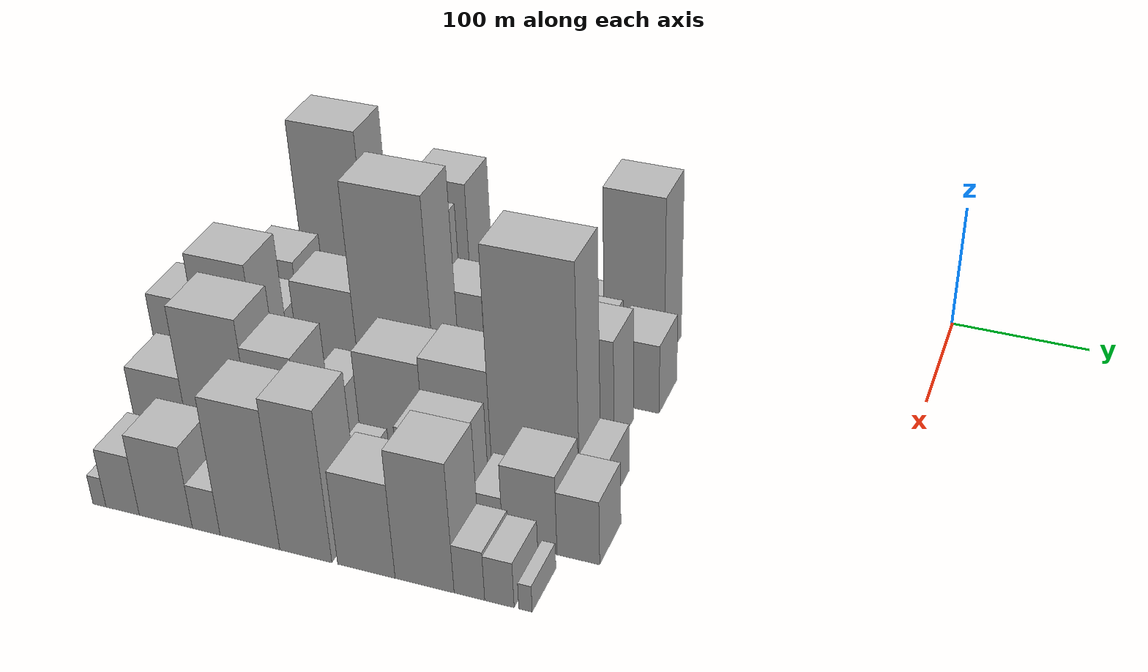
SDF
<sdf version="1.6">
 <world name="default">
  <model name="building_12">
   <static>1</static>
   <pose>100.0000 -482.2226 0 0.000000 0.000000 0.000000</pose>
   <link name="link">
    <pose>0 0 15.00 0 0 0</pose>
    <collision name="collision"><geometry><box><size>40.0000 16.5643 30.0000</size></box></geometry></collision>
    <visual name="visual">
     <cast_shadows>0</cast_shadows>
     <geometry><box><size>40.0000 16.5643 30.0000</size></box></geometry>
     <material>
      <script>
       <uri>model://HANNAS_wall/materials/scripts</uri>
       <uri>model://HANNAS_wall/materials/textures</uri>
       <name>vrc/HANNAS_wall</name>
      </script>
     </material>
    </visual>
   </link>
  </model>
  <model name="building_13">
   <static>1</static>
   <pose>100.0000 -443.1497 0 0.000000 0.000000 0.000000</pose>
   <link name="link">
    <pose>0 0 75.00 0 0 0</pose>
    <collision name="collision"><geometry><box><size>40.0000 53.5817 150.0000</size></box></geometry></collision>
    <visual name="visual">
     <cast_shadows>0</cast_shadows>
     <geometry><box><size>40.0000 53.5817 150.0000</size></box></geometry>
     <material>
      <script>
       <uri>model://HANNAS_wall/materials/scripts</uri>
       <uri>model://HANNAS_wall/materials/textures</uri>
       <name>vrc/HANNAS_wall</name>
      </script>
     </material>
    </visual>
   </link>
  </model>
  <model name="building_14">
   <static>1</static>
   <pose>100.0000 -395.4743 0 0.000000 0.000000 0.000000</pose>
   <link name="link">
    <pose>0 0 40.50 0 0 0</pose>
    <collision name="collision"><geometry><box><size>40.0000 41.7689 81.0000</size></box></geometry></collision>
    <visual name="visual">
     <cast_shadows>0</cast_shadows>
     <geometry><box><size>40.0000 41.7689 81.0000</size></box></geometry>
     <material>
      <script>
       <uri>model://HANNAS_wall/materials/scripts</uri>
       <uri>model://HANNAS_wall/materials/textures</uri>
       <name>vrc/HANNAS_wall</name>
      </script>
     </material>
    </visual>
   </link>
  </model>
  <model name="building_15">
   <static>1</static>
   <pose>100.0000 -354.0958 0 0.000000 0.000000 0.000000</pose>
   <link name="link">
    <pose>0 0 61.50 0 0 0</pose>
    <collision name="collision"><geometry><box><size>40.0000 40.9882 123.0000</size></box></geometry></collision>
    <visual name="visual">
     <cast_shadows>0</cast_shadows>
     <geometry><box><size>40.0000 40.9882 123.0000</size></box></geometry>
     <material>
      <script>
       <uri>model://HANNAS_wall/materials/scripts</uri>
       <uri>model://HANNAS_wall/materials/textures</uri>
       <name>vrc/HANNAS_wall</name>
      </script>
     </material>
    </visual>
   </link>
  </model>
  <model name="building_16">
   <static>1</static>
   <pose>100.0000 -325.2391 0 0.000000 0.000000 0.000000</pose>
   <link name="link">
    <pose>0 0 16.50 0 0 0</pose>
    <collision name="collision"><geometry><box><size>40.0000 16.7252 33.0000</size></box></geometry></collision>
    <visual name="visual">
     <cast_shadows>0</cast_shadows>
     <geometry><box><size>40.0000 16.7252 33.0000</size></box></geometry>
     <material>
      <script>
       <uri>model://HANNAS_wall/materials/scripts</uri>
       <uri>model://HANNAS_wall/materials/textures</uri>
       <name>vrc/HANNAS_wall</name>
      </script>
     </material>
    </visual>
   </link>
  </model>
  <model name="building_17">
   <static>1</static>
   <pose>100.0000 -310.9203 0 0.000000 0.000000 0.000000</pose>
   <link name="link">
    <pose>0 0 13.50 0 0 0</pose>
    <collision name="collision"><geometry><box><size>40.0000 11.9123 27.0000</size></box></geometry></collision>
    <visual name="visual">
     <cast_shadows>0</cast_shadows>
     <geometry><box><size>40.0000 11.9123 27.0000</size></box></geometry>
     <material>
      <script>
       <uri>model://HANNAS_wall/materials/scripts</uri>
       <uri>model://HANNAS_wall/materials/textures</uri>
       <name>vrc/HANNAS_wall</name>
      </script>
     </material>
    </visual>
   </link>
  </model>
  <model name="building_18">
   <static>1</static>
   <pose>100.0000 -282.7049 0 0.000000 0.000000 0.000000</pose>
   <link name="link">
    <pose>0 0 40.50 0 0 0</pose>
    <collision name="collision"><geometry><box><size>40.0000 44.5185 81.0000</size></box></geometry></collision>
    <visual name="visual">
     <cast_shadows>0</cast_shadows>
     <geometry><box><size>40.0000 44.5185 81.0000</size></box></geometry>
     <material>
      <script>
       <uri>model://HANNAS_wall/materials/scripts</uri>
       <uri>model://HANNAS_wall/materials/textures</uri>
       <name>vrc/HANNAS_wall</name>
      </script>
     </material>
    </visual>
   </link>
  </model>
  <model name="building_19">
   <static>1</static>
   <pose>100.0000 -241.1788 0 0.000000 0.000000 0.000000</pose>
   <link name="link">
    <pose>0 0 18.00 0 0 0</pose>
    <collision name="collision"><geometry><box><size>40.0000 20.5336 36.0000</size></box></geometry></collision>
    <visual name="visual">
     <cast_shadows>0</cast_shadows>
     <geometry><box><size>40.0000 20.5336 36.0000</size></box></geometry>
     <material>
      <script>
       <uri>model://HANNAS_wall/materials/scripts</uri>
       <uri>model://HANNAS_wall/materials/textures</uri>
       <name>vrc/HANNAS_wall</name>
      </script>
     </material>
    </visual>
   </link>
  </model>
  <model name="building_20">
   <static>1</static>
   <pose>100.0000 -208.2263 0 0.000000 0.000000 0.000000</pose>
   <link name="link">
    <pose>0 0 70.50 0 0 0</pose>
    <collision name="collision"><geometry><box><size>40.0000 45.3715 141.0000</size></box></geometry></collision>
    <visual name="visual">
     <cast_shadows>0</cast_shadows>
     <geometry><box><size>40.0000 45.3715 141.0000</size></box></geometry>
     <material>
      <script>
       <uri>model://HANNAS_wall/materials/scripts</uri>
       <uri>model://HANNAS_wall/materials/textures</uri>
       <name>vrc/HANNAS_wall</name>
      </script>
     </material>
    </visual>
   </link>
  </model>
  <model name="building_61">
   <static>1</static>
   <pose>152.0000 -466.2680 0 0.000000 0.000000 0.000000</pose>
   <link name="link">
    <pose>0 0 33.00 0 0 0</pose>
    <collision name="collision"><geometry><box><size>40.0000 37.8158 66.0000</size></box></geometry></collision>
    <visual name="visual">
     <cast_shadows>0</cast_shadows>
     <geometry><box><size>40.0000 37.8158 66.0000</size></box></geometry>
     <material>
      <script>
       <uri>model://HANNAS_wall/materials/scripts</uri>
       <uri>model://HANNAS_wall/materials/textures</uri>
       <name>vrc/HANNAS_wall</name>
      </script>
     </material>
    </visual>
   </link>
  </model>
  <model name="building_62">
   <static>1</static>
   <pose>152.0000 -439.7051 0 0.000000 0.000000 0.000000</pose>
   <link name="link">
    <pose>0 0 15.00 0 0 0</pose>
    <collision name="collision"><geometry><box><size>40.0000 15.3099 30.0000</size></box></geometry></collision>
    <visual name="visual">
     <cast_shadows>0</cast_shadows>
     <geometry><box><size>40.0000 15.3099 30.0000</size></box></geometry>
     <material>
      <script>
       <uri>model://HANNAS_wall/materials/scripts</uri>
       <uri>model://HANNAS_wall/materials/textures</uri>
       <name>vrc/HANNAS_wall</name>
      </script>
     </material>
    </visual>
   </link>
  </model>
  <model name="building_63">
   <static>1</static>
   <pose>152.0000 -422.1635 0 0.000000 0.000000 0.000000</pose>
   <link name="link">
    <pose>0 0 18.00 0 0 0</pose>
    <collision name="collision"><geometry><box><size>40.0000 19.7733 36.0000</size></box></geometry></collision>
    <visual name="visual">
     <cast_shadows>0</cast_shadows>
     <geometry><box><size>40.0000 19.7733 36.0000</size></box></geometry>
     <material>
      <script>
       <uri>model://HANNAS_wall/materials/scripts</uri>
       <uri>model://HANNAS_wall/materials/textures</uri>
       <name>vrc/HANNAS_wall</name>
      </script>
     </material>
    </visual>
   </link>
  </model>
  <model name="building_64">
   <static>1</static>
   <pose>152.0000 -395.3707 0 0.000000 0.000000 0.000000</pose>
   <link name="link">
    <pose>0 0 28.50 0 0 0</pose>
    <collision name="collision"><geometry><box><size>40.0000 33.8123 57.0000</size></box></geometry></collision>
    <visual name="visual">
     <cast_shadows>0</cast_shadows>
     <geometry><box><size>40.0000 33.8123 57.0000</size></box></geometry>
     <material>
      <script>
       <uri>model://HANNAS_wall/materials/scripts</uri>
       <uri>model://HANNAS_wall/materials/textures</uri>
       <name>vrc/HANNAS_wall</name>
      </script>
     </material>
    </visual>
   </link>
  </model>
  <model name="building_65">
   <static>1</static>
   <pose>152.0000 -357.4929 0 0.000000 0.000000 0.000000</pose>
   <link name="link">
    <pose>0 0 57.00 0 0 0</pose>
    <collision name="collision"><geometry><box><size>40.0000 41.9434 114.0000</size></box></geometry></collision>
    <visual name="visual">
     <cast_shadows>0</cast_shadows>
     <geometry><box><size>40.0000 41.9434 114.0000</size></box></geometry>
     <material>
      <script>
       <uri>model://HANNAS_wall/materials/scripts</uri>
       <uri>model://HANNAS_wall/materials/textures</uri>
       <name>vrc/HANNAS_wall</name>
      </script>
     </material>
    </visual>
   </link>
  </model>
  <model name="building_66">
   <static>1</static>
   <pose>152.0000 -319.0967 0 0.000000 0.000000 0.000000</pose>
   <link name="link">
    <pose>0 0 34.50 0 0 0</pose>
    <collision name="collision"><geometry><box><size>40.0000 34.8489 69.0000</size></box></geometry></collision>
    <visual name="visual">
     <cast_shadows>0</cast_shadows>
     <geometry><box><size>40.0000 34.8489 69.0000</size></box></geometry>
     <material>
      <script>
       <uri>model://HANNAS_wall/materials/scripts</uri>
       <uri>model://HANNAS_wall/materials/textures</uri>
       <name>vrc/HANNAS_wall</name>
      </script>
     </material>
    </visual>
   </link>
  </model>
  <model name="building_67">
   <static>1</static>
   <pose>152.0000 -288.5084 0 0.000000 0.000000 0.000000</pose>
   <link name="link">
    <pose>0 0 7.50 0 0 0</pose>
    <collision name="collision"><geometry><box><size>40.0000 6.3277 15.0000</size></box></geometry></collision>
    <visual name="visual">
     <cast_shadows>0</cast_shadows>
     <geometry><box><size>40.0000 6.3277 15.0000</size></box></geometry>
     <material>
      <script>
       <uri>model://HANNAS_wall/materials/scripts</uri>
       <uri>model://HANNAS_wall/materials/textures</uri>
       <name>vrc/HANNAS_wall</name>
      </script>
     </material>
    </visual>
   </link>
  </model>
  <model name="building_68">
   <static>1</static>
   <pose>152.0000 -260.9938 0 0.000000 0.000000 0.000000</pose>
   <link name="link">
    <pose>0 0 31.50 0 0 0</pose>
    <collision name="collision"><geometry><box><size>40.0000 34.7015 63.0000</size></box></geometry></collision>
    <visual name="visual">
     <cast_shadows>0</cast_shadows>
     <geometry><box><size>40.0000 34.7015 63.0000</size></box></geometry>
     <material>
      <script>
       <uri>model://HANNAS_wall/materials/scripts</uri>
       <uri>model://HANNAS_wall/materials/textures</uri>
       <name>vrc/HANNAS_wall</name>
      </script>
     </material>
    </visual>
   </link>
  </model>
  <model name="building_69">
   <static>1</static>
   <pose>152.0000 -228.0221 0 0.000000 0.000000 0.000000</pose>
   <link name="link">
    <pose>0 0 30.00 0 0 0</pose>
    <collision name="collision"><geometry><box><size>40.0000 31.2420 60.0000</size></box></geometry></collision>
    <visual name="visual">
     <cast_shadows>0</cast_shadows>
     <geometry><box><size>40.0000 31.2420 60.0000</size></box></geometry>
     <material>
      <script>
       <uri>model://HANNAS_wall/materials/scripts</uri>
       <uri>model://HANNAS_wall/materials/textures</uri>
       <name>vrc/HANNAS_wall</name>
      </script>
     </material>
    </visual>
   </link>
  </model>
  <model name="building_70">
   <static>1</static>
   <pose>152.0000 -189.3958 0 0.000000 0.000000 0.000000</pose>
   <link name="link">
    <pose>0 0 28.50 0 0 0</pose>
    <collision name="collision"><geometry><box><size>40.0000 34.0106 57.0000</size></box></geometry></collision>
    <visual name="visual">
     <cast_shadows>0</cast_shadows>
     <geometry><box><size>40.0000 34.0106 57.0000</size></box></geometry>
     <material>
      <script>
       <uri>model://HANNAS_wall/materials/scripts</uri>
       <uri>model://HANNAS_wall/materials/textures</uri>
       <name>vrc/HANNAS_wall</name>
      </script>
     </material>
    </visual>
   </link>
  </model>
  <model name="building_111">
   <static>1</static>
   <pose>204.0000 -487.4486 0 0.000000 0.000000 0.000000</pose>
   <link name="link">
    <pose>0 0 7.50 0 0 0</pose>
    <collision name="collision"><geometry><box><size>40.0000 6.8083 15.0000</size></box></geometry></collision>
    <visual name="visual">
     <cast_shadows>0</cast_shadows>
     <geometry><box><size>40.0000 6.8083 15.0000</size></box></geometry>
     <material>
      <script>
       <uri>model://HANNAS_wall/materials/scripts</uri>
       <uri>model://HANNAS_wall/materials/textures</uri>
       <name>vrc/HANNAS_wall</name>
      </script>
     </material>
    </visual>
   </link>
  </model>
  <model name="building_112">
   <static>1</static>
   <pose>204.0000 -471.1519 0 0.000000 0.000000 0.000000</pose>
   <link name="link">
    <pose>0 0 19.50 0 0 0</pose>
    <collision name="collision"><geometry><box><size>40.0000 19.7850 39.0000</size></box></geometry></collision>
    <visual name="visual">
     <cast_shadows>0</cast_shadows>
     <geometry><box><size>40.0000 19.7850 39.0000</size></box></geometry>
     <material>
      <script>
       <uri>model://HANNAS_wall/materials/scripts</uri>
       <uri>model://HANNAS_wall/materials/textures</uri>
       <name>vrc/HANNAS_wall</name>
      </script>
     </material>
    </visual>
   </link>
  </model>
  <model name="building_113">
   <static>1</static>
   <pose>204.0000 -444.9907 0 0.000000 0.000000 0.000000</pose>
   <link name="link">
    <pose>0 0 30.00 0 0 0</pose>
    <collision name="collision"><geometry><box><size>40.0000 32.5374 60.0000</size></box></geometry></collision>
    <visual name="visual">
     <cast_shadows>0</cast_shadows>
     <geometry><box><size>40.0000 32.5374 60.0000</size></box></geometry>
     <material>
      <script>
       <uri>model://HANNAS_wall/materials/scripts</uri>
       <uri>model://HANNAS_wall/materials/textures</uri>
       <name>vrc/HANNAS_wall</name>
      </script>
     </material>
    </visual>
   </link>
  </model>
  <model name="building_114">
   <static>1</static>
   <pose>204.0000 -396.6261 0 0.000000 0.000000 0.000000</pose>
   <link name="link">
    <pose>0 0 45.00 0 0 0</pose>
    <collision name="collision"><geometry><box><size>40.0000 46.1918 90.0000</size></box></geometry></collision>
    <visual name="visual">
     <cast_shadows>0</cast_shadows>
     <geometry><box><size>40.0000 46.1918 90.0000</size></box></geometry>
     <material>
      <script>
       <uri>model://HANNAS_wall/materials/scripts</uri>
       <uri>model://HANNAS_wall/materials/textures</uri>
       <name>vrc/HANNAS_wall</name>
      </script>
     </material>
    </visual>
   </link>
  </model>
  <model name="building_115">
   <static>1</static>
   <pose>204.0000 -344.7378 0 0.000000 0.000000 0.000000</pose>
   <link name="link">
    <pose>0 0 88.50 0 0 0</pose>
    <collision name="collision"><geometry><box><size>40.0000 57.5848 177.0000</size></box></geometry></collision>
    <visual name="visual">
     <cast_shadows>0</cast_shadows>
     <geometry><box><size>40.0000 57.5848 177.0000</size></box></geometry>
     <material>
      <script>
       <uri>model://HANNAS_wall/materials/scripts</uri>
       <uri>model://HANNAS_wall/materials/textures</uri>
       <name>vrc/HANNAS_wall</name>
      </script>
     </material>
    </visual>
   </link>
  </model>
  <model name="building_116">
   <static>1</static>
   <pose>204.0000 -304.5259 0 0.000000 0.000000 0.000000</pose>
   <link name="link">
    <pose>0 0 22.50 0 0 0</pose>
    <collision name="collision"><geometry><box><size>40.0000 22.8391 45.0000</size></box></geometry></collision>
    <visual name="visual">
     <cast_shadows>0</cast_shadows>
     <geometry><box><size>40.0000 22.8391 45.0000</size></box></geometry>
     <material>
      <script>
       <uri>model://HANNAS_wall/materials/scripts</uri>
       <uri>model://HANNAS_wall/materials/textures</uri>
       <name>vrc/HANNAS_wall</name>
      </script>
     </material>
    </visual>
   </link>
  </model>
  <model name="building_117">
   <static>1</static>
   <pose>204.0000 -280.9907 0 0.000000 0.000000 0.000000</pose>
   <link name="link">
    <pose>0 0 21.00 0 0 0</pose>
    <collision name="collision"><geometry><box><size>40.0000 24.2312 42.0000</size></box></geometry></collision>
    <visual name="visual">
     <cast_shadows>0</cast_shadows>
     <geometry><box><size>40.0000 24.2312 42.0000</size></box></geometry>
     <material>
      <script>
       <uri>model://HANNAS_wall/materials/scripts</uri>
       <uri>model://HANNAS_wall/materials/textures</uri>
       <name>vrc/HANNAS_wall</name>
      </script>
     </material>
    </visual>
   </link>
  </model>
  <model name="building_118">
   <static>1</static>
   <pose>204.0000 -245.9667 0 0.000000 0.000000 0.000000</pose>
   <link name="link">
    <pose>0 0 69.00 0 0 0</pose>
    <collision name="collision"><geometry><box><size>40.0000 45.8169 138.0000</size></box></geometry></collision>
    <visual name="visual">
     <cast_shadows>0</cast_shadows>
     <geometry><box><size>40.0000 45.8169 138.0000</size></box></geometry>
     <material>
      <script>
       <uri>model://HANNAS_wall/materials/scripts</uri>
       <uri>model://HANNAS_wall/materials/textures</uri>
       <name>vrc/HANNAS_wall</name>
      </script>
     </material>
    </visual>
   </link>
  </model>
  <model name="building_119">
   <static>1</static>
   <pose>204.0000 -205.0419 0 0.000000 0.000000 0.000000</pose>
   <link name="link">
    <pose>0 0 46.50 0 0 0</pose>
    <collision name="collision"><geometry><box><size>40.0000 36.0326 93.0000</size></box></geometry></collision>
    <visual name="visual">
     <cast_shadows>0</cast_shadows>
     <geometry><box><size>40.0000 36.0326 93.0000</size></box></geometry>
     <material>
      <script>
       <uri>model://HANNAS_wall/materials/scripts</uri>
       <uri>model://HANNAS_wall/materials/textures</uri>
       <name>vrc/HANNAS_wall</name>
      </script>
     </material>
    </visual>
   </link>
  </model>
  <model name="building_159">
   <static>1</static>
   <pose>256.0000 -480.2026 0 0.000000 0.000000 0.000000</pose>
   <link name="link">
    <pose>0 0 48.00 0 0 0</pose>
    <collision name="collision"><geometry><box><size>40.0000 34.8700 96.0000</size></box></geometry></collision>
    <visual name="visual">
     <cast_shadows>0</cast_shadows>
     <geometry><box><size>40.0000 34.8700 96.0000</size></box></geometry>
     <material>
      <script>
       <uri>model://HANNAS_wall/materials/scripts</uri>
       <uri>model://HANNAS_wall/materials/textures</uri>
       <name>vrc/HANNAS_wall</name>
      </script>
     </material>
    </visual>
   </link>
  </model>
  <model name="building_160">
   <static>1</static>
   <pose>256.0000 -440.9085 0 0.000000 0.000000 0.000000</pose>
   <link name="link">
    <pose>0 0 67.50 0 0 0</pose>
    <collision name="collision"><geometry><box><size>40.0000 43.7182 135.0000</size></box></geometry></collision>
    <visual name="visual">
     <cast_shadows>0</cast_shadows>
     <geometry><box><size>40.0000 43.7182 135.0000</size></box></geometry>
     <material>
      <script>
       <uri>model://HANNAS_wall/materials/scripts</uri>
       <uri>model://HANNAS_wall/materials/textures</uri>
       <name>vrc/HANNAS_wall</name>
      </script>
     </material>
    </visual>
   </link>
  </model>
  <model name="building_161">
   <static>1</static>
   <pose>256.0000 -410.5949 0 0.000000 0.000000 0.000000</pose>
   <link name="link">
    <pose>0 0 15.00 0 0 0</pose>
    <collision name="collision"><geometry><box><size>40.0000 16.9091 30.0000</size></box></geometry></collision>
    <visual name="visual">
     <cast_shadows>0</cast_shadows>
     <geometry><box><size>40.0000 16.9091 30.0000</size></box></geometry>
     <material>
      <script>
       <uri>model://HANNAS_wall/materials/scripts</uri>
       <uri>model://HANNAS_wall/materials/textures</uri>
       <name>vrc/HANNAS_wall</name>
      </script>
     </material>
    </visual>
   </link>
  </model>
  <model name="building_162">
   <static>1</static>
   <pose>256.0000 -397.6101 0 0.000000 0.000000 0.000000</pose>
   <link name="link">
    <pose>0 0 10.50 0 0 0</pose>
    <collision name="collision"><geometry><box><size>40.0000 9.0605 21.0000</size></box></geometry></collision>
    <visual name="visual">
     <cast_shadows>0</cast_shadows>
     <geometry><box><size>40.0000 9.0605 21.0000</size></box></geometry>
     <material>
      <script>
       <uri>model://HANNAS_wall/materials/scripts</uri>
       <uri>model://HANNAS_wall/materials/textures</uri>
       <name>vrc/HANNAS_wall</name>
      </script>
     </material>
    </visual>
   </link>
  </model>
  <model name="building_163">
   <static>1</static>
   <pose>256.0000 -370.1024 0 0.000000 0.000000 0.000000</pose>
   <link name="link">
    <pose>0 0 25.50 0 0 0</pose>
    <collision name="collision"><geometry><box><size>40.0000 25.9549 51.0000</size></box></geometry></collision>
    <visual name="visual">
     <cast_shadows>0</cast_shadows>
     <geometry><box><size>40.0000 25.9549 51.0000</size></box></geometry>
     <material>
      <script>
       <uri>model://HANNAS_wall/materials/scripts</uri>
       <uri>model://HANNAS_wall/materials/textures</uri>
       <name>vrc/HANNAS_wall</name>
      </script>
     </material>
    </visual>
   </link>
  </model>
  <model name="building_164">
   <static>1</static>
   <pose>256.0000 -324.6481 0 0.000000 0.000000 0.000000</pose>
   <link name="link">
    <pose>0 0 42.00 0 0 0</pose>
    <collision name="collision"><geometry><box><size>40.0000 46.9536 84.0000</size></box></geometry></collision>
    <visual name="visual">
     <cast_shadows>0</cast_shadows>
     <geometry><box><size>40.0000 46.9536 84.0000</size></box></geometry>
     <material>
      <script>
       <uri>model://HANNAS_wall/materials/scripts</uri>
       <uri>model://HANNAS_wall/materials/textures</uri>
       <name>vrc/HANNAS_wall</name>
      </script>
     </material>
    </visual>
   </link>
  </model>
  <model name="building_165">
   <static>1</static>
   <pose>256.0000 -277.3480 0 0.000000 0.000000 0.000000</pose>
   <link name="link">
    <pose>0 0 45.00 0 0 0</pose>
    <collision name="collision"><geometry><box><size>40.0000 47.6466 90.0000</size></box></geometry></collision>
    <visual name="visual">
     <cast_shadows>0</cast_shadows>
     <geometry><box><size>40.0000 47.6466 90.0000</size></box></geometry>
     <material>
      <script>
       <uri>model://HANNAS_wall/materials/scripts</uri>
       <uri>model://HANNAS_wall/materials/textures</uri>
       <name>vrc/HANNAS_wall</name>
      </script>
     </material>
    </visual>
   </link>
  </model>
  <model name="building_166">
   <static>1</static>
   <pose>256.0000 -222.9375 0 0.000000 0.000000 0.000000</pose>
   <link name="link">
    <pose>0 0 93.00 0 0 0</pose>
    <collision name="collision"><geometry><box><size>40.0000 61.1745 186.0000</size></box></geometry></collision>
    <visual name="visual">
     <cast_shadows>0</cast_shadows>
     <geometry><box><size>40.0000 61.1745 186.0000</size></box></geometry>
     <material>
      <script>
       <uri>model://HANNAS_wall/materials/scripts</uri>
       <uri>model://HANNAS_wall/materials/textures</uri>
       <name>vrc/HANNAS_wall</name>
      </script>
     </material>
    </visual>
   </link>
  </model>
  <model name="building_167">
   <static>1</static>
   <pose>256.0000 -182.2184 0 0.000000 0.000000 0.000000</pose>
   <link name="link">
    <pose>0 0 19.50 0 0 0</pose>
    <collision name="collision"><geometry><box><size>40.0000 20.2637 39.0000</size></box></geometry></collision>
    <visual name="visual">
     <cast_shadows>0</cast_shadows>
     <geometry><box><size>40.0000 20.2637 39.0000</size></box></geometry>
     <material>
      <script>
       <uri>model://HANNAS_wall/materials/scripts</uri>
       <uri>model://HANNAS_wall/materials/textures</uri>
       <name>vrc/HANNAS_wall</name>
      </script>
     </material>
    </visual>
   </link>
  </model>
  <model name="building_211">
   <static>1</static>
   <pose>308.0000 -488.7202 0 0.000000 0.000000 0.000000</pose>
   <link name="link">
    <pose>0 0 7.50 0 0 0</pose>
    <collision name="collision"><geometry><box><size>40.0000 6.7797 15.0000</size></box></geometry></collision>
    <visual name="visual">
     <cast_shadows>0</cast_shadows>
     <geometry><box><size>40.0000 6.7797 15.0000</size></box></geometry>
     <material>
      <script>
       <uri>model://HANNAS_wall/materials/scripts</uri>
       <uri>model://HANNAS_wall/materials/textures</uri>
       <name>vrc/HANNAS_wall</name>
      </script>
     </material>
    </visual>
   </link>
  </model>
  <model name="building_212">
   <static>1</static>
   <pose>308.0000 -465.3381 0 0.000000 0.000000 0.000000</pose>
   <link name="link">
    <pose>0 0 37.50 0 0 0</pose>
    <collision name="collision"><geometry><box><size>40.0000 39.9846 75.0000</size></box></geometry></collision>
    <visual name="visual">
     <cast_shadows>0</cast_shadows>
     <geometry><box><size>40.0000 39.9846 75.0000</size></box></geometry>
     <material>
      <script>
       <uri>model://HANNAS_wall/materials/scripts</uri>
       <uri>model://HANNAS_wall/materials/textures</uri>
       <name>vrc/HANNAS_wall</name>
      </script>
     </material>
    </visual>
   </link>
  </model>
  <model name="building_213">
   <static>1</static>
   <pose>308.0000 -421.2263 0 0.000000 0.000000 0.000000</pose>
   <link name="link">
    <pose>0 0 66.00 0 0 0</pose>
    <collision name="collision"><geometry><box><size>40.0000 48.2389 132.0000</size></box></geometry></collision>
    <visual name="visual">
     <cast_shadows>0</cast_shadows>
     <geometry><box><size>40.0000 48.2389 132.0000</size></box></geometry>
     <material>
      <script>
       <uri>model://HANNAS_wall/materials/scripts</uri>
       <uri>model://HANNAS_wall/materials/textures</uri>
       <name>vrc/HANNAS_wall</name>
      </script>
     </material>
    </visual>
   </link>
  </model>
  <model name="building_214">
   <static>1</static>
   <pose>308.0000 -379.2983 0 0.000000 0.000000 0.000000</pose>
   <link name="link">
    <pose>0 0 55.50 0 0 0</pose>
    <collision name="collision"><geometry><box><size>40.0000 35.6173 111.0000</size></box></geometry></collision>
    <visual name="visual">
     <cast_shadows>0</cast_shadows>
     <geometry><box><size>40.0000 35.6173 111.0000</size></box></geometry>
     <material>
      <script>
       <uri>model://HANNAS_wall/materials/scripts</uri>
       <uri>model://HANNAS_wall/materials/textures</uri>
       <name>vrc/HANNAS_wall</name>
      </script>
     </material>
    </visual>
   </link>
  </model>
  <model name="building_215">
   <static>1</static>
   <pose>308.0000 -358.3458 0 0.000000 0.000000 0.000000</pose>
   <link name="link">
    <pose>0 0 7.50 0 0 0</pose>
    <collision name="collision"><geometry><box><size>40.0000 6.2877 15.0000</size></box></geometry></collision>
    <visual name="visual">
     <cast_shadows>0</cast_shadows>
     <geometry><box><size>40.0000 6.2877 15.0000</size></box></geometry>
     <material>
      <script>
       <uri>model://HANNAS_wall/materials/scripts</uri>
       <uri>model://HANNAS_wall/materials/textures</uri>
       <name>vrc/HANNAS_wall</name>
      </script>
     </material>
    </visual>
   </link>
  </model>
  <model name="building_216">
   <static>1</static>
   <pose>308.0000 -350.2053 0 0.000000 0.000000 0.000000</pose>
   <link name="link">
    <pose>0 0 12.00 0 0 0</pose>
    <collision name="collision"><geometry><box><size>40.0000 9.9932 24.0000</size></box></geometry></collision>
    <visual name="visual">
     <cast_shadows>0</cast_shadows>
     <geometry><box><size>40.0000 9.9932 24.0000</size></box></geometry>
     <material>
      <script>
       <uri>model://HANNAS_wall/materials/scripts</uri>
       <uri>model://HANNAS_wall/materials/textures</uri>
       <name>vrc/HANNAS_wall</name>
      </script>
     </material>
    </visual>
   </link>
  </model>
  <model name="building_217">
   <static>1</static>
   <pose>308.0000 -331.6777 0 0.000000 0.000000 0.000000</pose>
   <link name="link">
    <pose>0 0 18.00 0 0 0</pose>
    <collision name="collision"><geometry><box><size>40.0000 21.0621 36.0000</size></box></geometry></collision>
    <visual name="visual">
     <cast_shadows>0</cast_shadows>
     <geometry><box><size>40.0000 21.0621 36.0000</size></box></geometry>
     <material>
      <script>
       <uri>model://HANNAS_wall/materials/scripts</uri>
       <uri>model://HANNAS_wall/materials/textures</uri>
       <name>vrc/HANNAS_wall</name>
      </script>
     </material>
    </visual>
   </link>
  </model>
  <model name="building_218">
   <static>1</static>
   <pose>308.0000 -315.9336 0 0.000000 0.000000 0.000000</pose>
   <link name="link">
    <pose>0 0 10.50 0 0 0</pose>
    <collision name="collision"><geometry><box><size>40.0000 10.4261 21.0000</size></box></geometry></collision>
    <visual name="visual">
     <cast_shadows>0</cast_shadows>
     <geometry><box><size>40.0000 10.4261 21.0000</size></box></geometry>
     <material>
      <script>
       <uri>model://HANNAS_wall/materials/scripts</uri>
       <uri>model://HANNAS_wall/materials/textures</uri>
       <name>vrc/HANNAS_wall</name>
      </script>
     </material>
    </visual>
   </link>
  </model>
  <model name="building_219">
   <static>1</static>
   <pose>308.0000 -302.6461 0 0.000000 0.000000 0.000000</pose>
   <link name="link">
    <pose>0 0 15.00 0 0 0</pose>
    <collision name="collision"><geometry><box><size>40.0000 16.1489 30.0000</size></box></geometry></collision>
    <visual name="visual">
     <cast_shadows>0</cast_shadows>
     <geometry><box><size>40.0000 16.1489 30.0000</size></box></geometry>
     <material>
      <script>
       <uri>model://HANNAS_wall/materials/scripts</uri>
       <uri>model://HANNAS_wall/materials/textures</uri>
       <name>vrc/HANNAS_wall</name>
      </script>
     </material>
    </visual>
   </link>
  </model>
  <model name="building_220">
   <static>1</static>
   <pose>308.0000 -272.7863 0 0.000000 0.000000 0.000000</pose>
   <link name="link">
    <pose>0 0 37.50 0 0 0</pose>
    <collision name="collision"><geometry><box><size>40.0000 43.5706 75.0000</size></box></geometry></collision>
    <visual name="visual">
     <cast_shadows>0</cast_shadows>
     <geometry><box><size>40.0000 43.5706 75.0000</size></box></geometry>
     <material>
      <script>
       <uri>model://HANNAS_wall/materials/scripts</uri>
       <uri>model://HANNAS_wall/materials/textures</uri>
       <name>vrc/HANNAS_wall</name>
      </script>
     </material>
    </visual>
   </link>
  </model>
  <model name="building_221">
   <static>1</static>
   <pose>308.0000 -235.4747 0 0.000000 0.000000 0.000000</pose>
   <link name="link">
    <pose>0 0 18.00 0 0 0</pose>
    <collision name="collision"><geometry><box><size>40.0000 21.0527 36.0000</size></box></geometry></collision>
    <visual name="visual">
     <cast_shadows>0</cast_shadows>
     <geometry><box><size>40.0000 21.0527 36.0000</size></box></geometry>
     <material>
      <script>
       <uri>model://HANNAS_wall/materials/scripts</uri>
       <uri>model://HANNAS_wall/materials/textures</uri>
       <name>vrc/HANNAS_wall</name>
      </script>
     </material>
    </visual>
   </link>
  </model>
  <model name="building_222">
   <static>1</static>
   <pose>308.0000 -206.6944 0 0.000000 0.000000 0.000000</pose>
   <link name="link">
    <pose>0 0 31.50 0 0 0</pose>
    <collision name="collision"><geometry><box><size>40.0000 36.5080 63.0000</size></box></geometry></collision>
    <visual name="visual">
     <cast_shadows>0</cast_shadows>
     <geometry><box><size>40.0000 36.5080 63.0000</size></box></geometry>
     <material>
      <script>
       <uri>model://HANNAS_wall/materials/scripts</uri>
       <uri>model://HANNAS_wall/materials/textures</uri>
       <name>vrc/HANNAS_wall</name>
      </script>
     </material>
    </visual>
   </link>
  </model>
  <model name="building_223">
   <static>1</static>
   <pose>308.0000 -174.2514 0 0.000000 0.000000 0.000000</pose>
   <link name="link">
    <pose>0 0 25.50 0 0 0</pose>
    <collision name="collision"><geometry><box><size>40.0000 28.3778 51.0000</size></box></geometry></collision>
    <visual name="visual">
     <cast_shadows>0</cast_shadows>
     <geometry><box><size>40.0000 28.3778 51.0000</size></box></geometry>
     <material>
      <script>
       <uri>model://HANNAS_wall/materials/scripts</uri>
       <uri>model://HANNAS_wall/materials/textures</uri>
       <name>vrc/HANNAS_wall</name>
      </script>
     </material>
    </visual>
   </link>
  </model>
  <model name="building_262">
   <static>1</static>
   <pose>360.0000 -485.1389 0 0.000000 0.000000 0.000000</pose>
   <link name="link">
    <pose>0 0 12.00 0 0 0</pose>
    <collision name="collision"><geometry><box><size>40.0000 9.6985 24.0000</size></box></geometry></collision>
    <visual name="visual">
     <cast_shadows>0</cast_shadows>
     <geometry><box><size>40.0000 9.6985 24.0000</size></box></geometry>
     <material>
      <script>
       <uri>model://HANNAS_wall/materials/scripts</uri>
       <uri>model://HANNAS_wall/materials/textures</uri>
       <name>vrc/HANNAS_wall</name>
      </script>
     </material>
    </visual>
   </link>
  </model>
  <model name="building_263">
   <static>1</static>
   <pose>360.0000 -467.9705 0 0.000000 0.000000 0.000000</pose>
   <link name="link">
    <pose>0 0 24.00 0 0 0</pose>
    <collision name="collision"><geometry><box><size>40.0000 24.6385 48.0000</size></box></geometry></collision>
    <visual name="visual">
     <cast_shadows>0</cast_shadows>
     <geometry><box><size>40.0000 24.6385 48.0000</size></box></geometry>
     <material>
      <script>
       <uri>model://HANNAS_wall/materials/scripts</uri>
       <uri>model://HANNAS_wall/materials/textures</uri>
       <name>vrc/HANNAS_wall</name>
      </script>
     </material>
    </visual>
   </link>
  </model>
  <model name="building_264">
   <static>1</static>
   <pose>360.0000 -436.2860 0 0.000000 0.000000 0.000000</pose>
   <link name="link">
    <pose>0 0 33.00 0 0 0</pose>
    <collision name="collision"><geometry><box><size>40.0000 38.7304 66.0000</size></box></geometry></collision>
    <visual name="visual">
     <cast_shadows>0</cast_shadows>
     <geometry><box><size>40.0000 38.7304 66.0000</size></box></geometry>
     <material>
      <script>
       <uri>model://HANNAS_wall/materials/scripts</uri>
       <uri>model://HANNAS_wall/materials/textures</uri>
       <name>vrc/HANNAS_wall</name>
      </script>
     </material>
    </visual>
   </link>
  </model>
  <model name="building_265">
   <static>1</static>
   <pose>360.0000 -406.9645 0 0.000000 0.000000 0.000000</pose>
   <link name="link">
    <pose>0 0 18.00 0 0 0</pose>
    <collision name="collision"><geometry><box><size>40.0000 19.9127 36.0000</size></box></geometry></collision>
    <visual name="visual">
     <cast_shadows>0</cast_shadows>
     <geometry><box><size>40.0000 19.9127 36.0000</size></box></geometry>
     <material>
      <script>
       <uri>model://HANNAS_wall/materials/scripts</uri>
       <uri>model://HANNAS_wall/materials/textures</uri>
       <name>vrc/HANNAS_wall</name>
      </script>
     </material>
    </visual>
   </link>
  </model>
  <model name="building_266">
   <static>1</static>
   <pose>360.0000 -375.8251 0 0.000000 0.000000 0.000000</pose>
   <link name="link">
    <pose>0 0 55.50 0 0 0</pose>
    <collision name="collision"><geometry><box><size>40.0000 42.3661 111.0000</size></box></geometry></collision>
    <visual name="visual">
     <cast_shadows>0</cast_shadows>
     <geometry><box><size>40.0000 42.3661 111.0000</size></box></geometry>
     <material>
      <script>
       <uri>model://HANNAS_wall/materials/scripts</uri>
       <uri>model://HANNAS_wall/materials/textures</uri>
       <name>vrc/HANNAS_wall</name>
      </script>
     </material>
    </visual>
   </link>
  </model>
  <model name="building_267">
   <static>1</static>
   <pose>360.0000 -336.5235 0 0.000000 0.000000 0.000000</pose>
   <link name="link">
    <pose>0 0 60.00 0 0 0</pose>
    <collision name="collision"><geometry><box><size>40.0000 36.2370 120.0000</size></box></geometry></collision>
    <visual name="visual">
     <cast_shadows>0</cast_shadows>
     <geometry><box><size>40.0000 36.2370 120.0000</size></box></geometry>
     <material>
      <script>
       <uri>model://HANNAS_wall/materials/scripts</uri>
       <uri>model://HANNAS_wall/materials/textures</uri>
       <name>vrc/HANNAS_wall</name>
      </script>
     </material>
    </visual>
   </link>
  </model>
  <model name="building_268">
   <static>1</static>
   <pose>360.0000 -294.8145 0 0.000000 0.000000 0.000000</pose>
   <link name="link">
    <pose>0 0 37.50 0 0 0</pose>
    <collision name="collision"><geometry><box><size>40.0000 39.1812 75.0000</size></box></geometry></collision>
    <visual name="visual">
     <cast_shadows>0</cast_shadows>
     <geometry><box><size>40.0000 39.1812 75.0000</size></box></geometry>
     <material>
      <script>
       <uri>model://HANNAS_wall/materials/scripts</uri>
       <uri>model://HANNAS_wall/materials/textures</uri>
       <name>vrc/HANNAS_wall</name>
      </script>
     </material>
    </visual>
   </link>
  </model>
  <model name="building_269">
   <static>1</static>
   <pose>360.0000 -255.4805 0 0.000000 0.000000 0.000000</pose>
   <link name="link">
    <pose>0 0 51.00 0 0 0</pose>
    <collision name="collision"><geometry><box><size>40.0000 39.4868 102.0000</size></box></geometry></collision>
    <visual name="visual">
     <cast_shadows>0</cast_shadows>
     <geometry><box><size>40.0000 39.4868 102.0000</size></box></geometry>
     <material>
      <script>
       <uri>model://HANNAS_wall/materials/scripts</uri>
       <uri>model://HANNAS_wall/materials/textures</uri>
       <name>vrc/HANNAS_wall</name>
      </script>
     </material>
    </visual>
   </link>
  </model>
  <model name="building_270">
   <static>1</static>
   <pose>360.0000 -225.6431 0 0.000000 0.000000 0.000000</pose>
   <link name="link">
    <pose>0 0 19.50 0 0 0</pose>
    <collision name="collision"><geometry><box><size>40.0000 20.1881 39.0000</size></box></geometry></collision>
    <visual name="visual">
     <cast_shadows>0</cast_shadows>
     <geometry><box><size>40.0000 20.1881 39.0000</size></box></geometry>
     <material>
      <script>
       <uri>model://HANNAS_wall/materials/scripts</uri>
       <uri>model://HANNAS_wall/materials/textures</uri>
       <name>vrc/HANNAS_wall</name>
      </script>
     </material>
    </visual>
   </link>
  </model>
  <model name="building_271">
   <static>1</static>
   <pose>360.0000 -205.9347 0 0.000000 0.000000 0.000000</pose>
   <link name="link">
    <pose>0 0 18.00 0 0 0</pose>
    <collision name="collision"><geometry><box><size>40.0000 19.2286 36.0000</size></box></geometry></collision>
    <visual name="visual">
     <cast_shadows>0</cast_shadows>
     <geometry><box><size>40.0000 19.2286 36.0000</size></box></geometry>
     <material>
      <script>
       <uri>model://HANNAS_wall/materials/scripts</uri>
       <uri>model://HANNAS_wall/materials/textures</uri>
       <name>vrc/HANNAS_wall</name>
      </script>
     </material>
    </visual>
   </link>
  </model>
  <model name="building_272">
   <static>1</static>
   <pose>360.0000 -188.9629 0 0.000000 0.000000 0.000000</pose>
   <link name="link">
    <pose>0 0 10.50 0 0 0</pose>
    <collision name="collision"><geometry><box><size>40.0000 8.7150 21.0000</size></box></geometry></collision>
    <visual name="visual">
     <cast_shadows>0</cast_shadows>
     <geometry><box><size>40.0000 8.7150 21.0000</size></box></geometry>
     <material>
      <script>
       <uri>model://HANNAS_wall/materials/scripts</uri>
       <uri>model://HANNAS_wall/materials/textures</uri>
       <name>vrc/HANNAS_wall</name>
      </script>
     </material>
    </visual>
   </link>
  </model>
 </world>
</sdf>
